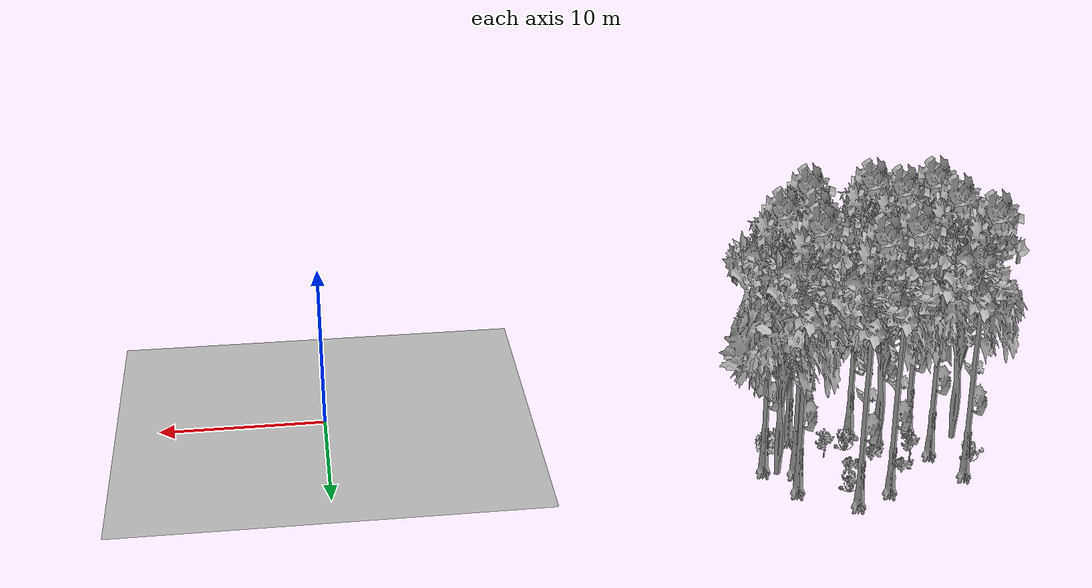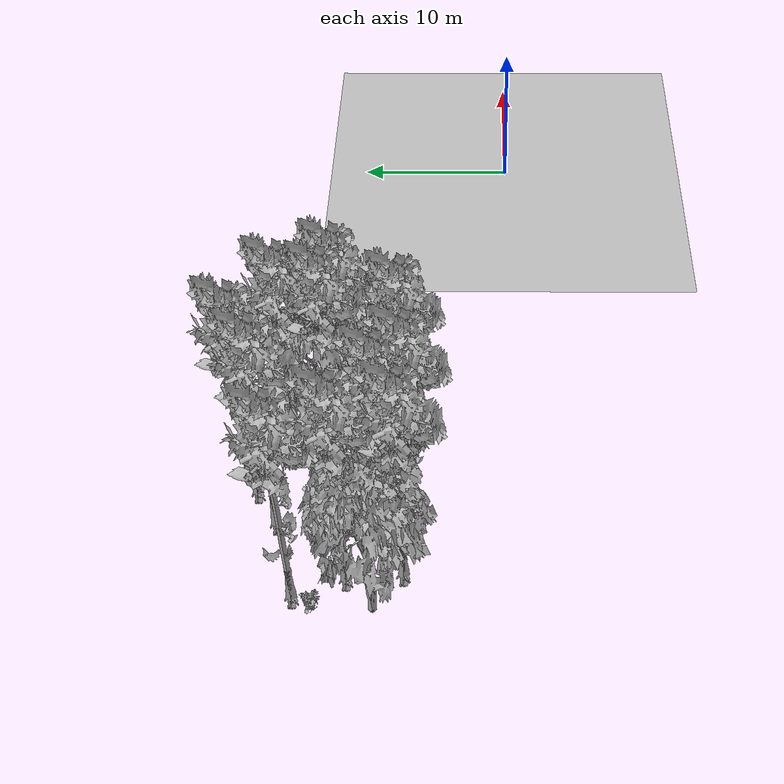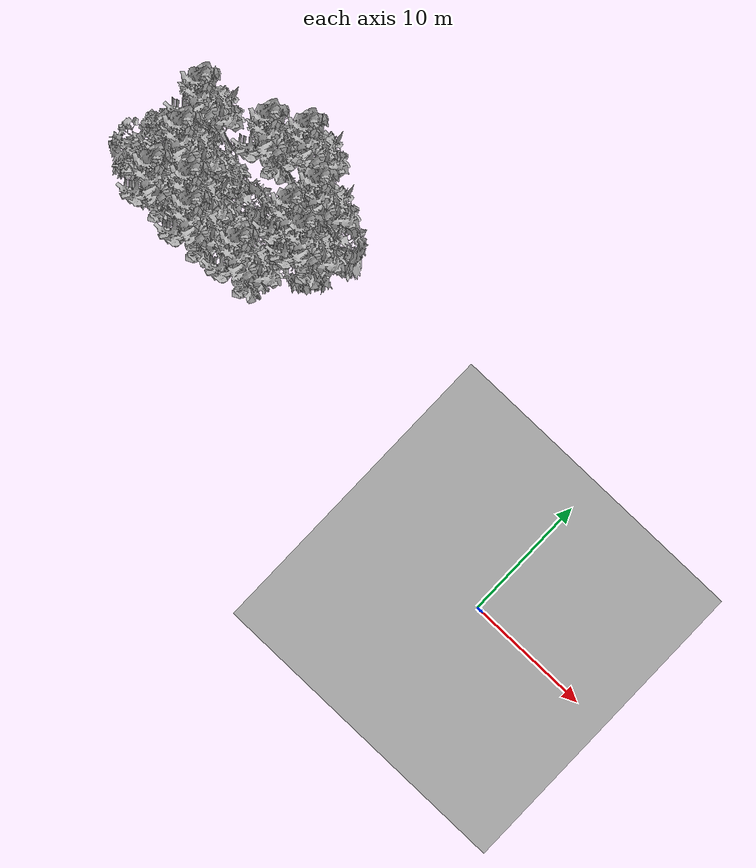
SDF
<sdf version="1.7">
 <world name="default">
  <model name="ground_plane">
   <static>1</static>
   <link name="link">
    <collision name="collision">
     <pose>-50 0 0 0 -0 0</pose>
     <geometry><plane><normal>0 0 1</normal><size>80 80</size></plane></geometry>
     <surface><contact><ode><min_depth>0.01</min_depth><max_vel>0</max_vel></ode></contact></surface>
    </collision>
    <visual name="grass">
     <cast_shadows>0</cast_shadows>
     <geometry>
      <mesh>
       <scale>0.46714285714285714 0.46714285714285714 0.1</scale>
       <uri>file://grass_plane/meshes/grass_plane.dae</uri>
      </mesh>
     </geometry>
    </visual>
   </link>
  </model>
  <model name="Tree 7">
   <static>1</static>
   <pose>-35.136264443272616 5.9302808848362645 0 1.57079 -0 0</pose>
   <link name="link">
    <collision name="collision">
     <geometry><mesh><scale>3.5 5 3.5</scale><uri>model://tree_9/meshes/tree_9.obj</uri></mesh></geometry>
    </collision>
    <visual name="visual">
     <geometry><mesh><scale>3.5 5 3.5</scale><uri>model://tree_9/meshes/tree_9.obj</uri></mesh></geometry>
    </visual>
   </link>
  </model>
  <model name="Tree 24">
   <static>1</static>
   <pose>-26.485810664263035 12.45841072428221 0 1.57079 -0 0</pose>
   <link name="link">
    <collision name="collision">
     <geometry><mesh><scale>3.5 5 3.5</scale><uri>model://tree_9/meshes/tree_9.obj</uri></mesh></geometry>
    </collision>
    <visual name="visual">
     <geometry><mesh><scale>3.5 5 3.5</scale><uri>model://tree_9/meshes/tree_9.obj</uri></mesh></geometry>
    </visual>
   </link>
  </model>
  <model name="Tree 86">
   <static>1</static>
   <pose>-25.85817787933843 10.498840447099212 0 1.57079 -0 0</pose>
   <link name="link">
    <collision name="collision">
     <geometry><mesh><scale>3.5 5 3.5</scale><uri>model://tree_2/meshes/tree_2.obj</uri></mesh></geometry>
    </collision>
    <visual name="visual">
     <geometry><mesh><scale>3.5 5 3.5</scale><uri>model://tree_2/meshes/tree_2.obj</uri></mesh></geometry>
    </visual>
   </link>
  </model>
  <model name="Tree 166">
   <static>1</static>
   <pose>-32.84557614757362 7.049943509294756 0 1.57079 -0 0</pose>
   <link name="link">
    <collision name="collision">
     <geometry><mesh><scale>3.5 5 3.5</scale><uri>model://tree_9/meshes/tree_9.obj</uri></mesh></geometry>
    </collision>
    <visual name="visual">
     <geometry><mesh><scale>3.5 5 3.5</scale><uri>model://tree_9/meshes/tree_9.obj</uri></mesh></geometry>
    </visual>
   </link>
  </model>
  <model name="Tree 177">
   <static>1</static>
   <pose>-25.151011884660754 9.695998961252414 0 1.57079 -0 0</pose>
   <link name="link">
    <collision name="collision">
     <geometry><mesh><scale>3.5 5 3.5</scale><uri>model://tree_9/meshes/tree_9.obj</uri></mesh></geometry>
    </collision>
    <visual name="visual">
     <geometry><mesh><scale>3.5 5 3.5</scale><uri>model://tree_9/meshes/tree_9.obj</uri></mesh></geometry>
    </visual>
   </link>
  </model>
  <model name="Tree 236">
   <static>1</static>
   <pose>-31.46280332252035 5.733383686909697 0 1.57079 -0 0</pose>
   <link name="link">
    <collision name="collision">
     <geometry><mesh><scale>3.5 5 3.5</scale><uri>model://tree_9/meshes/tree_9.obj</uri></mesh></geometry>
    </collision>
    <visual name="visual">
     <geometry><mesh><scale>3.5 5 3.5</scale><uri>model://tree_9/meshes/tree_9.obj</uri></mesh></geometry>
    </visual>
   </link>
  </model>
  <model name="Tree 272">
   <static>1</static>
   <pose>-37.449576221039365 7.502124549353184 0 1.57079 -0 0</pose>
   <link name="link">
    <collision name="collision">
     <geometry><mesh><scale>3.5 5 3.5</scale><uri>model://tree_2/meshes/tree_2.obj</uri></mesh></geometry>
    </collision>
    <visual name="visual">
     <geometry><mesh><scale>3.5 5 3.5</scale><uri>model://tree_2/meshes/tree_2.obj</uri></mesh></geometry>
    </visual>
   </link>
  </model>
  <model name="Tree 332">
   <static>1</static>
   <pose>-31.710694496271795 13.247973392132664 0 1.57079 -0 0</pose>
   <link name="link">
    <collision name="collision">
     <geometry><mesh><scale>3.5 5 3.5</scale><uri>model://tree_9/meshes/tree_9.obj</uri></mesh></geometry>
    </collision>
    <visual name="visual">
     <geometry><mesh><scale>3.5 5 3.5</scale><uri>model://tree_9/meshes/tree_9.obj</uri></mesh></geometry>
    </visual>
   </link>
  </model>
  <model name="Tree 342">
   <static>1</static>
   <pose>-36.59316168521997 11.936298499543128 0 1.57079 -0 0</pose>
   <link name="link">
    <collision name="collision">
     <geometry><mesh><scale>3.5 5 3.5</scale><uri>model://tree_9/meshes/tree_9.obj</uri></mesh></geometry>
    </collision>
    <visual name="visual">
     <geometry><mesh><scale>3.5 5 3.5</scale><uri>model://tree_9/meshes/tree_9.obj</uri></mesh></geometry>
    </visual>
   </link>
  </model>
  <model name="Tree 376">
   <static>1</static>
   <pose>-27.552104582415133 6.137391343485746 0 1.57079 -0 0</pose>
   <link name="link">
    <collision name="collision">
     <geometry><mesh><scale>3.5 5 3.5</scale><uri>model://tree_9/meshes/tree_9.obj</uri></mesh></geometry>
    </collision>
    <visual name="visual">
     <geometry><mesh><scale>3.5 5 3.5</scale><uri>model://tree_9/meshes/tree_9.obj</uri></mesh></geometry>
    </visual>
   </link>
  </model>
  <model name="Tree 486">
   <static>1</static>
   <pose>-35.4519774317326 9.061687456137577 0 1.57079 -0 0</pose>
   <link name="link">
    <collision name="collision">
     <geometry><mesh><scale>3.5 5 3.5</scale><uri>model://tree_9/meshes/tree_9.obj</uri></mesh></geometry>
    </collision>
    <visual name="visual">
     <geometry><mesh><scale>3.5 5 3.5</scale><uri>model://tree_9/meshes/tree_9.obj</uri></mesh></geometry>
    </visual>
   </link>
  </model>
  <model name="Tree 524">
   <static>1</static>
   <pose>-29.477776954854157 14.552422685587025 0 1.57079 -0 0</pose>
   <link name="link">
    <collision name="collision">
     <geometry><mesh><scale>3.5 5 3.5</scale><uri>model://tree_9/meshes/tree_9.obj</uri></mesh></geometry>
    </collision>
    <visual name="visual">
     <geometry><mesh><scale>3.5 5 3.5</scale><uri>model://tree_9/meshes/tree_9.obj</uri></mesh></geometry>
    </visual>
   </link>
  </model>
  <model name="Tree 609">
   <static>1</static>
   <pose>-32.612854054726604 8.02564143551728 0 1.57079 -0 0</pose>
   <link name="link">
    <collision name="collision">
     <geometry><mesh><scale>3.5 5 3.5</scale><uri>model://tree_2/meshes/tree_2.obj</uri></mesh></geometry>
    </collision>
    <visual name="visual">
     <geometry><mesh><scale>3.5 5 3.5</scale><uri>model://tree_2/meshes/tree_2.obj</uri></mesh></geometry>
    </visual>
   </link>
  </model>
  <model name="Tree 611">
   <static>1</static>
   <pose>-26.882389386957954 10.22809834494224 0 1.57079 -0 0</pose>
   <link name="link">
    <collision name="collision">
     <geometry><mesh><scale>3.5 5 3.5</scale><uri>model://tree_9/meshes/tree_9.obj</uri></mesh></geometry>
    </collision>
    <visual name="visual">
     <geometry><mesh><scale>3.5 5 3.5</scale><uri>model://tree_9/meshes/tree_9.obj</uri></mesh></geometry>
    </visual>
   </link>
  </model>
  <model name="Bush 50">
   <static>1</static>
   <pose>-29.306354834368726 13.317002328905119 0 1.57079 -0 0</pose>
   <link name="link">
    <collision name="collision">
     <geometry><mesh><scale>2 2 2</scale><uri>model://bush_4/meshes/bush_4.obj</uri></mesh></geometry>
     <surface><contact><collide_without_contact>false</collide_without_contact></contact></surface>
    </collision>
    <visual name="visual">
     <geometry><mesh><scale>2 2 2</scale><uri>model://bush_4/meshes/bush_4.obj</uri></mesh></geometry>
    </visual>
   </link>
  </model>
  <model name="Bush 84">
   <static>1</static>
   <pose>-30.374732791776474 10.054057688309605 0 1.57079 -0 0</pose>
   <link name="link">
    <collision name="collision">
     <geometry><mesh><scale>2 2 2</scale><uri>model://bush_2/meshes/bush_2.obj</uri></mesh></geometry>
     <surface><contact><collide_without_contact>false</collide_without_contact></contact></surface>
    </collision>
    <visual name="visual">
     <geometry><mesh><scale>2 2 2</scale><uri>model://bush_2/meshes/bush_2.obj</uri></mesh></geometry>
    </visual>
   </link>
  </model>
  <model name="Bush 244">
   <static>1</static>
   <pose>-33.912182901675976 9.931474115819157 0 1.57079 -0 0</pose>
   <link name="link">
    <collision name="collision">
     <geometry><mesh><scale>2 2 2</scale><uri>model://bush_5/meshes/bush_5.obj</uri></mesh></geometry>
     <surface><contact><collide_without_contact>false</collide_without_contact></contact></surface>
    </collision>
    <visual name="visual">
     <geometry><mesh><scale>2 2 2</scale><uri>model://bush_5/meshes/bush_5.obj</uri></mesh></geometry>
    </visual>
   </link>
  </model>
  <model name="Bush 303">
   <static>1</static>
   <pose>-37.3111063884664 10.775663113951168 0 1.57079 -0 0</pose>
   <link name="link">
    <collision name="collision">
     <geometry><mesh><scale>2 2 2</scale><uri>model://bush_4/meshes/bush_4.obj</uri></mesh></geometry>
     <surface><contact><collide_without_contact>false</collide_without_contact></contact></surface>
    </collision>
    <visual name="visual">
     <geometry><mesh><scale>2 2 2</scale><uri>model://bush_4/meshes/bush_4.obj</uri></mesh></geometry>
    </visual>
   </link>
  </model>
  <model name="Bush 330">
   <static>1</static>
   <pose>-30.453352083291136 8.276874954767308 0 1.57079 -0 0</pose>
   <link name="link">
    <collision name="collision">
     <geometry><mesh><scale>2 2 2</scale><uri>model://bush_4/meshes/bush_4.obj</uri></mesh></geometry>
     <surface><contact><collide_without_contact>false</collide_without_contact></contact></surface>
    </collision>
    <visual name="visual">
     <geometry><mesh><scale>2 2 2</scale><uri>model://bush_4/meshes/bush_4.obj</uri></mesh></geometry>
    </visual>
   </link>
  </model>
  <model name="Bush 376">
   <static>1</static>
   <pose>-25.73825451280853 8.308209389102174 0 1.57079 -0 0</pose>
   <link name="link">
    <collision name="collision">
     <geometry><mesh><scale>2 2 2</scale><uri>model://bush_1/meshes/bush_1.obj</uri></mesh></geometry>
     <surface><contact><collide_without_contact>false</collide_without_contact></contact></surface>
    </collision>
    <visual name="visual">
     <geometry><mesh><scale>2 2 2</scale><uri>model://bush_1/meshes/bush_1.obj</uri></mesh></geometry>
    </visual>
   </link>
  </model>
  <model name="Bush 458">
   <static>1</static>
   <pose>-32.088182716856444 8.824838609508049 0 1.57079 -0 0</pose>
   <link name="link">
    <collision name="collision">
     <geometry><mesh><scale>2 2 2</scale><uri>model://bush_2/meshes/bush_2.obj</uri></mesh></geometry>
     <surface><contact><collide_without_contact>false</collide_without_contact></contact></surface>
    </collision>
    <visual name="visual">
     <geometry><mesh><scale>2 2 2</scale><uri>model://bush_2/meshes/bush_2.obj</uri></mesh></geometry>
    </visual>
   </link>
  </model>
  <model name="Bush 530">
   <static>1</static>
   <pose>-28.95715219012592 9.010105782407265 0 1.57079 -0 0</pose>
   <link name="link">
    <collision name="collision">
     <geometry><mesh><scale>2 2 2</scale><uri>model://bush_5/meshes/bush_5.obj</uri></mesh></geometry>
     <surface><contact><collide_without_contact>false</collide_without_contact></contact></surface>
    </collision>
    <visual name="visual">
     <geometry><mesh><scale>2 2 2</scale><uri>model://bush_5/meshes/bush_5.obj</uri></mesh></geometry>
    </visual>
   </link>
  </model>
  <model name="Bush 584">
   <static>1</static>
   <pose>-33.3850965555427 10.558821124028754 0 1.57079 -0 0</pose>
   <link name="link">
    <collision name="collision">
     <geometry><mesh><scale>2 2 2</scale><uri>model://bush_2/meshes/bush_2.obj</uri></mesh></geometry>
     <surface><contact><collide_without_contact>false</collide_without_contact></contact></surface>
    </collision>
    <visual name="visual">
     <geometry><mesh><scale>2 2 2</scale><uri>model://bush_2/meshes/bush_2.obj</uri></mesh></geometry>
    </visual>
   </link>
  </model>
 </world>
</sdf>
